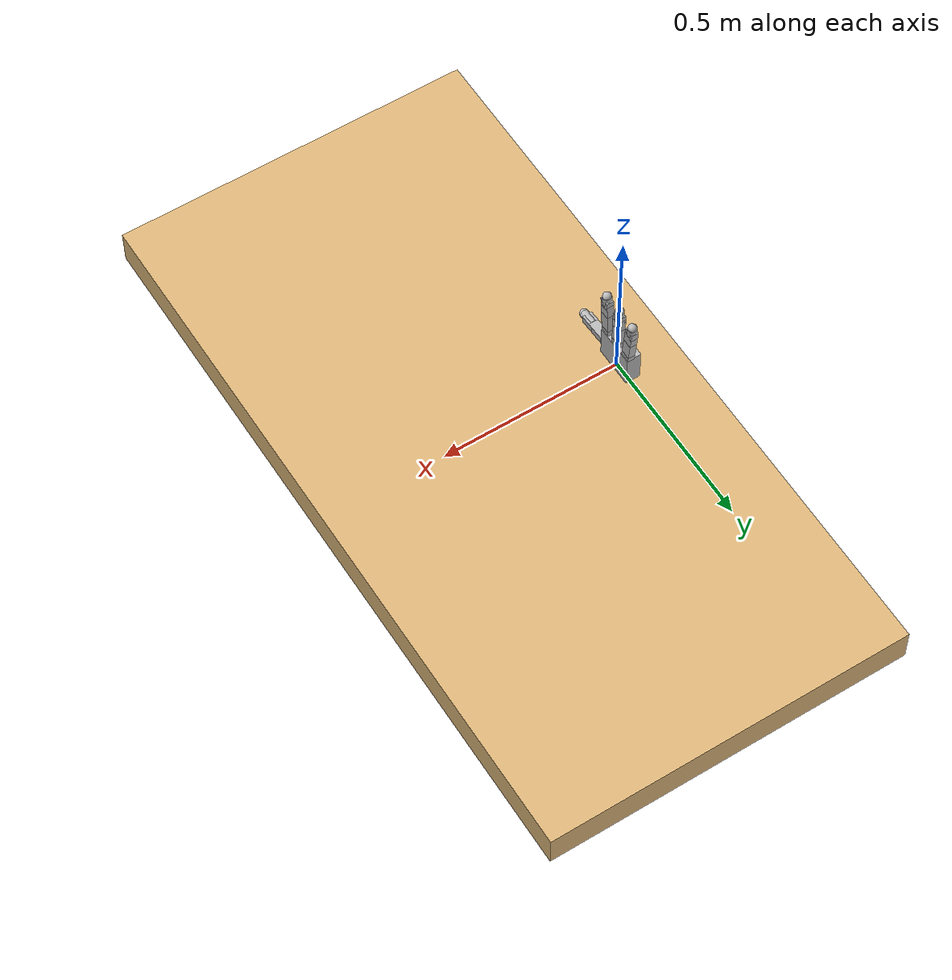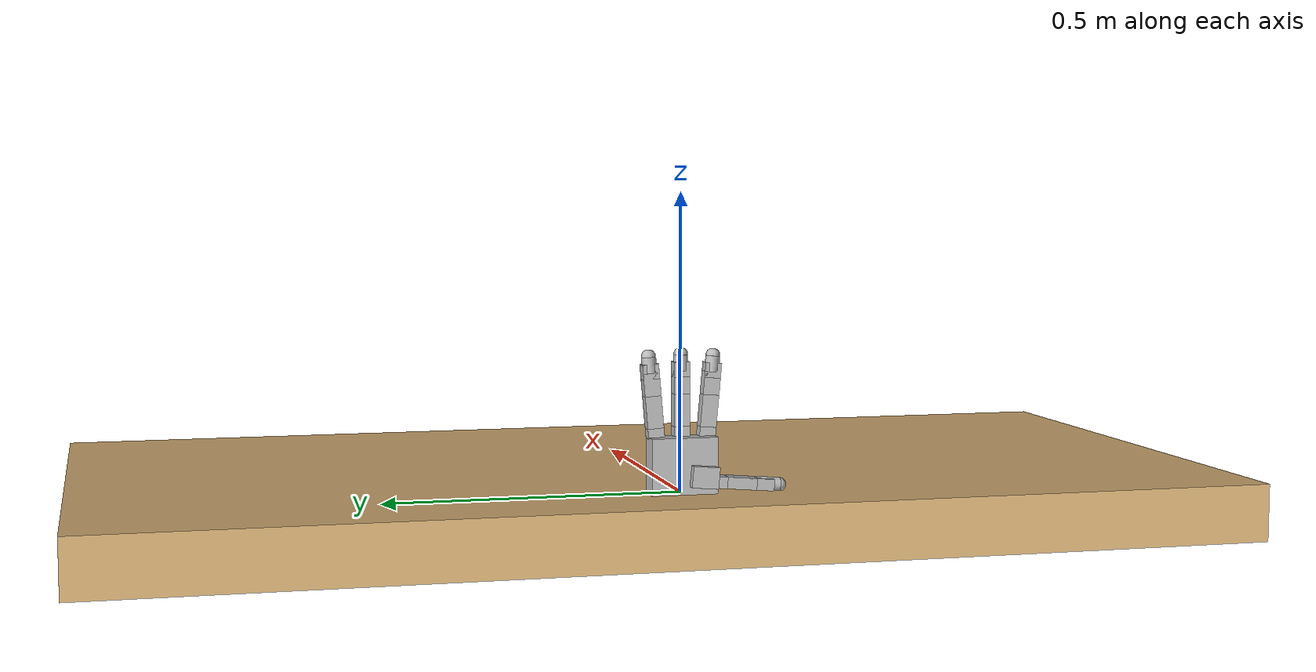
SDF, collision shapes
<?xml version="1.0"?>
<sdf version="1.7">
  <model name="algr_lh_simplified">

    <!-- TABLETOP -->

    <link name="tabletop_base">
      <pose>0.34 0.0 -0.05 0.0 0.0 0.0</pose>
      <inertial>
        <pose>0 0 0 0 0 0</pose>
        <mass>10</mass>
        <inertia>
          <ixx>3.3417</ixx>
          <ixy>0</ixy>
          <ixz>0</ixz>
          <iyy>0.84167</iyy>
          <iyz>0</iyz>
          <izz>4.1667</izz>
        </inertia>
      </inertial>
      <visual name="tabletop_visual">
        <geometry>
          <box>
            <size>1 2 0.1</size>
          </box>
        </geometry>
        <material>
          <diffuse>0.859375 0.70703125 0.47265625 1.</diffuse>
        </material>
      </visual>
      <collision name="tabletop_collision">
        <geometry>
          <box>
            <size>1 2 0.1</size>
          </box>
        </geometry>
      </collision>
    </link>
    <joint name="table_weld" type="fixed">
      <child>tabletop_base</child>
      <parent>world</parent>
    </joint>

    <!-- ALLEGRO HAND -->

    <link name="algr_lh_palm">
      <inertial>
        <pose>-0.0093 0 0.0475 0 0 0</pose>
        <mass>0.4154</mass>
        <inertia>
          <ixx>0.00075444</ixx>
          <ixy>0</ixy>
          <ixz>0</ixz>
          <iyy>0.00037004</iyy>
          <iyz>0</iyz>
          <izz>0.00049964</izz>
        </inertia>
      </inertial>
      <collision name="algr_lh_palm_collision">
        <pose>-0.0093 0 0.0475 0 0 0</pose>
        <geometry>
          <box>
            <size>0.0408 0.113 0.095</size>
          </box>
        </geometry>
      </collision>
      <visual name="algr_lh_palm_visual">
        <pose>0 0 0.095 -1.5708 0 0</pose>
        <geometry>
          <mesh>
            <scale>1 1 1</scale>
            <uri>meshes/base_link_left.obj</uri>
          </mesh>
        </geometry>
      </visual>
    </link>
    <link name="algr_lh_if_bs">
      <pose>0 -0.0435 0.093458 0.087267 0 0</pose>
      <inertial>
        <pose>0 0 0.0082 0 0 0</pose>
        <mass>0.0119</mass>
        <inertia>
          <ixx>1.0167e-06</ixx>
          <ixy>0</ixy>
          <ixz>0</ixz>
          <iyy>6.4768e-07</iyy>
          <iyz>0</iyz>
          <izz>1.1309e-06</izz>
        </inertia>
      </inertial>
      <collision name="algr_lh_if_bs_collision">
        <pose>0 0 0.0082 0 0 0</pose>
        <geometry>
          <box>
            <size>0.0196 0.0275 0.0164</size>
          </box>
        </geometry>
      </collision>
      <visual name="algr_lh_if_bs_visual">
        <geometry>
          <mesh>
            <scale>1 1 1</scale>
            <uri>meshes/link_0.0.obj</uri>
          </mesh>
        </geometry>
      </visual>
    </link>
    <joint name="algr_lh_if_axl" type="revolute">
      <child>algr_lh_if_bs</child>
      <parent>algr_lh_palm</parent>
      <axis>
        <xyz expressed_in="__model__">0 -0.087156 0.996195</xyz>
        <limit>
          <lower>-0.47</lower>
          <upper>0.47</upper>
          <effort>0.7</effort>
        </limit>
        <dynamics>
          <damping>1.5e-2</damping>
        </dynamics>
      </axis>
    </joint>
    <link name="algr_lh_if_px">
      <pose>0 -0.044929 0.109796 0.087267 0 0</pose>
      <inertial>
        <pose>0 6.9389e-18 0.027 0 0 0</pose>
        <mass>0.065</mass>
        <inertia>
          <ixx>1.9891e-05</ixx>
          <ixy>0</ixy>
          <ixz>0</ixz>
          <iyy>1.7876e-05</iyy>
          <iyz>0</iyz>
          <izz>6.1772e-06</izz>
        </inertia>
      </inertial>
      <collision name="algr_lh_if_px_collision">
        <pose>0 0 0.027 0 0 0</pose>
        <geometry>
          <box>
            <size>0.0196 0.0275 0.054</size>
          </box>
        </geometry>
      </collision>
      <visual name="algr_lh_if_px_visual">
        <geometry>
          <mesh>
            <scale>1 1 1</scale>
            <uri>meshes/link_1.0.obj</uri>
          </mesh>
        </geometry>
      </visual>
    </link>
    <joint name="algr_lh_if_mcp" type="revolute">
      <child>algr_lh_if_px</child>
      <parent>algr_lh_if_bs</parent>
      <axis>
        <xyz expressed_in="__model__">0 0.996195 0.087156</xyz>
        <limit>
          <lower>-0.196</lower>
          <upper>1.61</upper>
          <effort>0.7</effort>
        </limit>
        <dynamics>
          <damping>1.5e-2</damping>
        </dynamics>
      </axis>
    </joint>
    <link name="algr_lh_if_md">
      <pose>0 -0.049636 0.16359 0.087267 0 0</pose>
      <inertial>
        <pose>0 -6.9389e-18 0.0192 0 0 0</pose>
        <mass>0.0355</mass>
        <inertia>
          <ixx>6.5995e-06</ixx>
          <ixy>0</ixy>
          <ixz>0</ixz>
          <iyy>5.4987e-06</iyy>
          <iyz>0</iyz>
          <izz>3.3737e-06</izz>
        </inertia>
      </inertial>
      <collision name="algr_lh_if_md_collision">
        <pose>0 0 0.0192 0 0 0</pose>
        <geometry>
          <box>
            <size>0.0196 0.0275 0.0384</size>
          </box>
        </geometry>
      </collision>
      <visual name="algr_lh_if_md_visual">
        <geometry>
          <mesh>
            <scale>1 1 1</scale>
            <uri>meshes/link_2.0.obj</uri>
          </mesh>
        </geometry>
      </visual>
    </link>
    <joint name="algr_lh_if_pip" type="revolute">
      <child>algr_lh_if_md</child>
      <parent>algr_lh_if_px</parent>
      <axis>
        <xyz expressed_in="__model__">0 0.996195 0.087156</xyz>
        <limit>
          <lower>-0.174</lower>
          <upper>1.709</upper>
          <effort>0.7</effort>
        </limit>
        <dynamics>
          <damping>1.5e-2</damping>
        </dynamics>
      </axis>
    </joint>
    <link name="algr_lh_if_ds">
      <pose>0 -0.052983 0.201844 0.087267 0 0</pose>
      <inertial>
        <pose>0 -1.3878e-17 0.011823 0 0 0</pose>
        <mass>0.0264</mass>
        <inertia>
          <ixx>4.7816e-06</ixx>
          <ixy>0</ixy>
          <ixz>0</ixz>
          <iyy>4.4476e-06</iyy>
          <iyz>0</iyz>
          <izz>2.0646e-06</izz>
        </inertia>
      </inertial>
      <collision name="algr_lh_if_ds_collision_1">
        <pose>0 0 0.00235 0 0 0</pose>
        <geometry>
          <box>
            <size>0.0196 0.0275 0.0247</size>
          </box>
        </geometry>
      </collision>
      <collision name="algr_lh_if_ds_tip_collision_1_FROGGERCOL">
        <pose>0 0 0.0267 0 0 0</pose>
        <geometry>
          <sphere>
            <radius>0.012</radius>
          </sphere>
        </geometry>
        <drake:proximity_properties>
          <drake:rigid_hydroelastic/>
          <drake:mesh_resolution_hint>0.1</drake:mesh_resolution_hint>
          <drake:hunt_crossley_dissipation>1.0</drake:hunt_crossley_dissipation>
        </drake:proximity_properties>
      </collision>
      <collision name="algr_lh_if_ds_tip_collision_2_FROGGERCOL">
        <pose>0 0 0.01335 0 0 0</pose>
        <geometry>
          <cylinder>
            <length>0.0267</length>
            <radius>0.012</radius>
          </cylinder>
        </geometry>
      </collision>
      <visual name="algr_lh_if_ds_visual">
        <geometry>
          <mesh>
            <scale>1 1 1</scale>
            <uri>meshes/link_3.0.obj</uri>
          </mesh>
        </geometry>
      </visual>
      <visual name="algr_lh_if_ds_tip_visual_1">
        <pose>0 0 0.0267 0 0 0</pose>
        <geometry>
          <mesh>
            <scale>1 1 1</scale>
            <uri>meshes/link_3.0_tip.obj</uri>
          </mesh>
        </geometry>
      </visual>
    </link>
    <joint name="algr_lh_if_dip" type="revolute">
      <child>algr_lh_if_ds</child>
      <parent>algr_lh_if_md</parent>
      <axis>
        <xyz expressed_in="__model__">0 0.996195 0.087156</xyz>
        <limit>
          <lower>-0.227</lower>
          <upper>1.618</upper>
          <effort>0.7</effort>
        </limit>
        <dynamics>
          <damping>1.5e-2</damping>
        </dynamics>
      </axis>
    </joint>
    <link name="algr_lh_mf_bs">
      <pose>0 0 0.0957 0 0 0</pose>
      <inertial>
        <pose>0 0 0.0082 0 0 0</pose>
        <mass>0.0119</mass>
        <inertia>
          <ixx>1.0167e-06</ixx>
          <ixy>0</ixy>
          <ixz>0</ixz>
          <iyy>6.4768e-07</iyy>
          <iyz>0</iyz>
          <izz>1.1309e-06</izz>
        </inertia>
      </inertial>
      <collision name="algr_lh_mf_bs_collision">
        <pose>0 0 0.0082 0 0 0</pose>
        <geometry>
          <box>
            <size>0.0196 0.0275 0.0164</size>
          </box>
        </geometry>
      </collision>
      <visual name="algr_lh_mf_bs_visual">
        <geometry>
          <mesh>
            <scale>1 1 1</scale>
            <uri>meshes/link_0.0.obj</uri>
          </mesh>
        </geometry>
      </visual>
    </link>
    <joint name="algr_lh_mf_axl" type="revolute">
      <child>algr_lh_mf_bs</child>
      <parent>algr_lh_palm</parent>
      <axis>
        <xyz expressed_in="__model__">0 0 1</xyz>
        <limit>
          <lower>-0.47</lower>
          <upper>0.47</upper>
          <effort>0.7</effort>
        </limit>
        <dynamics>
          <damping>1.5e-2</damping>
        </dynamics>
      </axis>
    </joint>
    <link name="algr_lh_mf_px">
      <pose>0 0 0.1121 0 0 0</pose>
      <inertial>
        <pose>0 0 0.027 0 0 0</pose>
        <mass>0.065</mass>
        <inertia>
          <ixx>1.9891e-05</ixx>
          <ixy>0</ixy>
          <ixz>0</ixz>
          <iyy>1.7876e-05</iyy>
          <iyz>0</iyz>
          <izz>6.1772e-06</izz>
        </inertia>
      </inertial>
      <collision name="algr_lh_mf_px_collision">
        <pose>0 0 0.027 0 0 0</pose>
        <geometry>
          <box>
            <size>0.0196 0.0275 0.054</size>
          </box>
        </geometry>
      </collision>
      <visual name="algr_lh_mf_px_visual">
        <geometry>
          <mesh>
            <scale>1 1 1</scale>
            <uri>meshes/link_1.0.obj</uri>
          </mesh>
        </geometry>
      </visual>
    </link>
    <joint name="algr_lh_mf_mcp" type="revolute">
      <child>algr_lh_mf_px</child>
      <parent>algr_lh_mf_bs</parent>
      <axis>
        <xyz expressed_in="__model__">0 1 0</xyz>
        <limit>
          <lower>-0.196</lower>
          <upper>1.61</upper>
          <effort>0.7</effort>
        </limit>
        <dynamics>
          <damping>1.5e-2</damping>
        </dynamics>
      </axis>
    </joint>
    <link name="algr_lh_mf_md">
      <pose>0 0 0.1661 0 0 0</pose>
      <inertial>
        <pose>0 0 0.0192 0 0 0</pose>
        <mass>0.0355</mass>
        <inertia>
          <ixx>6.5995e-06</ixx>
          <ixy>0</ixy>
          <ixz>0</ixz>
          <iyy>5.4987e-06</iyy>
          <iyz>0</iyz>
          <izz>3.3737e-06</izz>
        </inertia>
      </inertial>
      <collision name="algr_lh_mf_md_collision">
        <pose>0 0 0.0192 0 0 0</pose>
        <geometry>
          <box>
            <size>0.0196 0.0275 0.0384</size>
          </box>
        </geometry>
      </collision>
      <visual name="algr_lh_mf_md_visual">
        <geometry>
          <mesh>
            <scale>1 1 1</scale>
            <uri>meshes/link_2.0.obj</uri>
          </mesh>
        </geometry>
      </visual>
    </link>
    <joint name="algr_lh_mf_pip" type="revolute">
      <child>algr_lh_mf_md</child>
      <parent>algr_lh_mf_px</parent>
      <axis>
        <xyz expressed_in="__model__">0 1 0</xyz>
        <limit>
          <lower>-0.174</lower>
          <upper>1.709</upper>
          <effort>0.7</effort>
        </limit>
        <dynamics>
          <damping>1.5e-2</damping>
        </dynamics>
      </axis>
    </joint>
    <link name="algr_lh_mf_ds">
      <pose>0 0 0.2045 0 0 0</pose>
      <inertial>
        <pose>0 0 0.011823 0 0 0</pose>
        <mass>0.0264</mass>
        <inertia>
          <ixx>4.7816e-06</ixx>
          <ixy>0</ixy>
          <ixz>0</ixz>
          <iyy>4.4476e-06</iyy>
          <iyz>0</iyz>
          <izz>2.0646e-06</izz>
        </inertia>
      </inertial>
      <collision name="algr_lh_mf_ds_collision_1">
        <pose>0 0 0.00235 0 0 0</pose>
        <geometry>
          <box>
            <size>0.0196 0.0275 0.0247</size>
          </box>
        </geometry>
      </collision>
      <collision name="algr_lh_mf_ds_tip_collision_1_FROGGERCOL">
        <pose>0 0 0.0267 0 0 0</pose>
        <geometry>
          <sphere>
            <radius>0.012</radius>
          </sphere>
        </geometry>
        <drake:proximity_properties>
          <drake:rigid_hydroelastic/>
          <drake:mesh_resolution_hint>0.1</drake:mesh_resolution_hint>
          <drake:hunt_crossley_dissipation>1.0</drake:hunt_crossley_dissipation>
        </drake:proximity_properties>
      </collision>
      <collision name="algr_lh_mf_ds_tip_collision_2_FROGGERCOL">
        <pose>0 0 0.01335 0 0 0</pose>
        <geometry>
          <cylinder>
            <length>0.0267</length>
            <radius>0.012</radius>
          </cylinder>
        </geometry>
      </collision>
      <visual name="algr_lh_mf_ds_visual">
        <geometry>
          <mesh>
            <scale>1 1 1</scale>
            <uri>meshes/link_3.0.obj</uri>
          </mesh>
        </geometry>
      </visual>
      <visual name="algr_lh_mf_ds_tip_visual_1">
        <pose>0 0 0.0267 0 0 0</pose>
        <geometry>
          <mesh>
            <scale>1 1 1</scale>
            <uri>meshes/link_3.0_tip.obj</uri>
          </mesh>
        </geometry>
      </visual>
    </link>
    <joint name="algr_lh_mf_dip" type="revolute">
      <child>algr_lh_mf_ds</child>
      <parent>algr_lh_mf_md</parent>
      <axis>
        <xyz expressed_in="__model__">0 1 0</xyz>
        <limit>
          <lower>-0.227</lower>
          <upper>1.618</upper>
          <effort>0.7</effort>
        </limit>
        <dynamics>
          <damping>1.5e-2</damping>
        </dynamics>
      </axis>
    </joint>
    <link name="algr_lh_rf_bs">
      <pose>0 0.0435 0.093458 -0.087267 0 0</pose>
      <inertial>
        <pose>0 0 0.0082 0 0 0</pose>
        <mass>0.0119</mass>
        <inertia>
          <ixx>1.0167e-06</ixx>
          <ixy>0</ixy>
          <ixz>0</ixz>
          <iyy>6.4768e-07</iyy>
          <iyz>0</iyz>
          <izz>1.1309e-06</izz>
        </inertia>
      </inertial>
      <collision name="algr_lh_rf_bs_collision">
        <pose>0 0 0.0082 0 0 0</pose>
        <geometry>
          <box>
            <size>0.0196 0.0275 0.0164</size>
          </box>
        </geometry>
      </collision>
      <visual name="algr_lh_rf_bs_visual">
        <geometry>
          <mesh>
            <scale>1 1 1</scale>
            <uri>meshes/link_0.0.obj</uri>
          </mesh>
        </geometry>
      </visual>
    </link>
    <joint name="algr_lh_rf_axl" type="revolute">
      <child>algr_lh_rf_bs</child>
      <parent>algr_lh_palm</parent>
      <axis>
        <xyz expressed_in="__model__">0 0.087156 0.996195</xyz>
        <limit>
          <lower>-0.47</lower>
          <upper>0.47</upper>
          <effort>0.7</effort>
        </limit>
        <dynamics>
          <damping>1.5e-2</damping>
        </dynamics>
      </axis>
    </joint>
    <link name="algr_lh_rf_px">
      <pose>0 0.044929 0.109796 -0.087267 0 0</pose>
      <inertial>
        <pose>0 -6.9389e-18 0.027 0 0 0</pose>
        <mass>0.065</mass>
        <inertia>
          <ixx>1.9891e-05</ixx>
          <ixy>0</ixy>
          <ixz>0</ixz>
          <iyy>1.7876e-05</iyy>
          <iyz>0</iyz>
          <izz>6.1772e-06</izz>
        </inertia>
      </inertial>
      <collision name="algr_lh_rf_px_collision">
        <pose>0 0 0.027 0 0 0</pose>
        <geometry>
          <box>
            <size>0.0196 0.0275 0.054</size>
          </box>
        </geometry>
      </collision>
      <visual name="algr_lh_rf_px_visual">
        <geometry>
          <mesh>
            <scale>1 1 1</scale>
            <uri>meshes/link_1.0.obj</uri>
          </mesh>
        </geometry>
      </visual>
    </link>
    <joint name="algr_lh_rf_mcp" type="revolute">
      <child>algr_lh_rf_px</child>
      <parent>algr_lh_rf_bs</parent>
      <axis>
        <xyz expressed_in="__model__">0 0.996195 -0.087156</xyz>
        <limit>
          <lower>-0.196</lower>
          <upper>1.61</upper>
          <effort>0.7</effort>
        </limit>
        <dynamics>
          <damping>1.5e-2</damping>
        </dynamics>
      </axis>
    </joint>
    <link name="algr_lh_rf_md">
      <pose>0 0.049636 0.16359 -0.087267 0 0</pose>
      <inertial>
        <pose>0 6.9389e-18 0.0192 0 0 0</pose>
        <mass>0.0355</mass>
        <inertia>
          <ixx>6.5995e-06</ixx>
          <ixy>0</ixy>
          <ixz>0</ixz>
          <iyy>5.4987e-06</iyy>
          <iyz>0</iyz>
          <izz>3.3737e-06</izz>
        </inertia>
      </inertial>
      <collision name="algr_lh_rf_md_collision">
        <pose>0 0 0.0192 0 0 0</pose>
        <geometry>
          <box>
            <size>0.0196 0.0275 0.0384</size>
          </box>
        </geometry>
      </collision>
      <visual name="algr_lh_rf_md_visual">
        <geometry>
          <mesh>
            <scale>1 1 1</scale>
            <uri>meshes/link_2.0.obj</uri>
          </mesh>
        </geometry>
      </visual>
    </link>
    <joint name="algr_lh_rf_pip" type="revolute">
      <child>algr_lh_rf_md</child>
      <parent>algr_lh_rf_px</parent>
      <axis>
        <xyz expressed_in="__model__">0 0.996195 -0.087156</xyz>
        <limit>
          <lower>-0.174</lower>
          <upper>1.709</upper>
          <effort>0.7</effort>
        </limit>
        <dynamics>
          <damping>1.5e-2</damping>
        </dynamics>
      </axis>
    </joint>
    <link name="algr_lh_rf_ds">
      <pose>0 0.052983 0.201844 -0.087267 0 0</pose>
      <inertial>
        <pose>0 1.3878e-17 0.011823 0 0 0</pose>
        <mass>0.0264</mass>
        <inertia>
          <ixx>4.7816e-06</ixx>
          <ixy>0</ixy>
          <ixz>0</ixz>
          <iyy>4.4476e-06</iyy>
          <iyz>0</iyz>
          <izz>2.0646e-06</izz>
        </inertia>
      </inertial>
      <collision name="algr_lh_rf_ds_collision_1">
        <pose>0 0 0.00235 0 0 0</pose>
        <geometry>
          <box>
            <size>0.0196 0.0275 0.0247</size>
          </box>
        </geometry>
      </collision>
      <collision name="algr_lh_rf_ds_tip_collision_1_FROGGERCOL">
        <pose>0 0 0.0267 0 0 0</pose>
        <geometry>
          <sphere>
            <radius>0.012</radius>
          </sphere>
        </geometry>
        <drake:proximity_properties>
          <drake:rigid_hydroelastic/>
          <drake:mesh_resolution_hint>0.1</drake:mesh_resolution_hint>
          <drake:hunt_crossley_dissipation>1.0</drake:hunt_crossley_dissipation>
        </drake:proximity_properties>
      </collision>
      <collision name="algr_lh_rf_ds_tip_collision_2_FROGGERCOL">
        <pose>0 0 0.01335 0 0 0</pose>
        <geometry>
          <cylinder>
            <length>0.0267</length>
            <radius>0.012</radius>
          </cylinder>
        </geometry>
      </collision>
      <visual name="algr_lh_rf_ds_visual">
        <geometry>
          <mesh>
            <scale>1 1 1</scale>
            <uri>meshes/link_3.0.obj</uri>
          </mesh>
        </geometry>
      </visual>
      <visual name="algr_lh_rf_ds_tip_visual_1">
        <pose>0 0 0.0267 0 0 0</pose>
        <geometry>
          <mesh>
            <scale>1 1 1</scale>
            <uri>meshes/link_3.0_tip.obj</uri>
          </mesh>
        </geometry>
      </visual>
    </link>
    <joint name="algr_lh_rf_dip" type="revolute">
      <child>algr_lh_rf_ds</child>
      <parent>algr_lh_rf_md</parent>
      <axis>
        <xyz expressed_in="__model__">0 0.996195 -0.087156</xyz>
        <limit>
          <lower>-0.227</lower>
          <upper>1.618</upper>
          <effort>0.7</effort>
        </limit>
        <dynamics>
          <damping>1.5e-2</damping>
        </dynamics>
      </axis>
    </joint>
    <link name="algr_lh_th_mp">
      <pose>-0.0182 -0.019333 0.049013 -3.14159 -1.48353 -1.5708</pose>
      <inertial>
        <pose>-0.0179 0.009 0.0145 0 0 0</pose>
        <mass>0.0176</mass>
        <inertia>
          <ixx>4.7318e-06</ixx>
          <ixy>0</ixy>
          <ixz>0</ixz>
          <iyy>4.9161e-06</iyy>
          <iyz>0</iyz>
          <izz>3.5752e-06</izz>
        </inertia>
      </inertial>
      <collision name="algr_lh_th_mp_collision">
        <pose>-0.0179 0.009 0.0145 0 0 0</pose>
        <geometry>
          <box>
            <size>0.0358 0.034 0.0455</size>
          </box>
        </geometry>
      </collision>
      <visual name="algr_lh_th_mp_visual">
        <pose>0 0 0 3.14159 0 0</pose>
        <geometry>
          <mesh>
            <scale>1 1 1</scale>
            <uri>meshes/link_12.0_left.obj</uri>
          </mesh>
        </geometry>
      </visual>
    </link>
    <joint name="algr_lh_th_cmc" type="revolute">
      <child>algr_lh_th_mp</child>
      <parent>algr_lh_palm</parent>
      <axis>
        <xyz expressed_in="__model__">-0 -0.087156 0.996195</xyz>
        <limit>
          <lower>0.263</lower>
          <upper>1.396</upper>
          <effort>0.7</effort>
        </limit>
        <dynamics>
          <damping>1.5e-2</damping>
        </dynamics>
      </axis>
    </joint>
    <link name="algr_lh_th_bs">
      <pose>-0.0132 -0.056728 0.018638 -3.14159 -1.48353 -1.5708</pose>
      <inertial>
        <pose>-6.9389e-18 5.2042e-18 0.00885 0 0 0</pose>
        <mass>0.0119</mass>
        <inertia>
          <ixx>1.0606e-06</ixx>
          <ixy>0</ixy>
          <ixz>0</ixz>
          <iyy>6.9164e-07</iyy>
          <iyz>7.1621e-38</iyz>
          <izz>1.1309e-06</izz>
        </inertia>
      </inertial>
      <!-- [NOTE] this collision geometry caused problems for the Drake team -->
      <collision name='algr_lh_th_bs_collision'>
        <pose>0 0 0.00885 0 0 0</pose>
        <geometry>
          <box>
            <size>0.0196 0.0275 0.0177</size>
          </box>
        </geometry>
      </collision>
      <visual name="algr_lh_th_bs_visual">
        <geometry>
          <mesh>
            <scale>1 1 1</scale>
            <uri>meshes/link_13.0.obj</uri>
          </mesh>
        </geometry>
      </visual>
    </link>
    <joint name="algr_lh_th_axl" type="revolute">
      <child>algr_lh_th_bs</child>
      <parent>algr_lh_th_mp</parent>
      <axis>
        <xyz expressed_in="__model__">0 0.996195 0.087156</xyz>
        <limit>
          <lower>-0.105</lower>
          <upper>1.163</upper>
          <effort>0.7</effort>
        </limit>
        <dynamics>
          <damping>1.5e-2</damping>
        </dynamics>
      </axis>
    </joint>
    <link name="algr_lh_th_px">
      <pose>-0.0132 -0.074361 0.017096 -3.14159 -1.48353 -1.5708</pose>
      <inertial>
        <pose>-6.9389e-18 -3.4694e-18 0.0257 0 0 0</pose>
        <mass>0.038</mass>
        <inertia>
          <ixx>1.0761e-05</ixx>
          <ixy>0</ixy>
          <ixz>0</ixz>
          <iyy>9.5827e-06</iyy>
          <iyz>0</iyz>
          <izz>3.6113e-06</izz>
        </inertia>
      </inertial>
      <collision name="algr_lh_th_px_collision">
        <pose>0 0 0.0257 0 0 0</pose>
        <geometry>
          <box>
            <size>0.0196 0.0275 0.0514</size>
          </box>
        </geometry>
      </collision>
      <visual name="algr_lh_th_px_visual">
        <geometry>
          <mesh>
            <scale>1 1 1</scale>
            <uri>meshes/link_14.0.obj</uri>
          </mesh>
        </geometry>
      </visual>
    </link>
    <joint name="algr_lh_th_mcp" type="revolute">
      <child>algr_lh_th_px</child>
      <parent>algr_lh_th_bs</parent>
      <axis>
        <xyz expressed_in="__model__">-1 0 0</xyz>
        <limit>
          <lower>-0.189</lower>
          <upper>1.644</upper>
          <effort>0.7</effort>
        </limit>
        <dynamics>
          <damping>1.5e-2</damping>
        </dynamics>
      </axis>
    </joint>
    <link name="algr_lh_th_ds">
      <pose>-0.0132 -0.125565 0.012616 -3.14159 -1.48353 -1.5708</pose>
      <inertial>
        <pose>-6.9389e-18 1.7347e-17 0.019365 0 0 0</pose>
        <mass>0.0556</mass>
        <inertia>
          <ixx>1.6162e-05</ixx>
          <ixy>0</ixy>
          <ixz>0</ixz>
          <iyy>1.5383e-05</iyy>
          <iyz>0</iyz>
          <izz>4.4611e-06</izz>
        </inertia>
      </inertial>
      <collision name="algr_lh_th_ds_collision_1">
        <pose>0 0 0.01015 0 0 0</pose>
        <geometry>
          <box>
            <size>0.0196 0.0275 0.0403</size>
          </box>
        </geometry>
      </collision>
      <collision name="algr_lh_th_ds_tip_collision_1_FROGGERCOL">
        <pose>0 0 0.0423 0 0 0</pose>
        <geometry>
          <sphere>
            <radius>0.012</radius>
          </sphere>
        </geometry>
        <drake:proximity_properties>
          <drake:rigid_hydroelastic/>
          <drake:mesh_resolution_hint>0.1</drake:mesh_resolution_hint>
          <drake:hunt_crossley_dissipation>1.0</drake:hunt_crossley_dissipation>
        </drake:proximity_properties>
      </collision>
      <collision name="algr_lh_th_ds_tip_collision_2_FROGGERCOL">
        <pose>0 0 0.02115 0 0 0</pose>
        <geometry>
          <cylinder>
            <length>0.0423</length>
            <radius>0.012</radius>
          </cylinder>
        </geometry>
      </collision>
      <visual name="algr_lh_th_ds_visual">
        <geometry>
          <mesh>
            <scale>1 1 1</scale>
            <uri>meshes/link_15.0.obj</uri>
          </mesh>
        </geometry>
      </visual>
      <visual name="algr_lh_th_ds_tip_visual_1">
        <pose>0 0 0.0423 0 0 0</pose>
        <geometry>
          <mesh>
            <scale>1 1 1</scale>
            <uri>meshes/link_15.0_tip.obj</uri>
          </mesh>
        </geometry>
      </visual>
    </link>
    <joint name="algr_lh_th_ipl" type="revolute">
      <child>algr_lh_th_ds</child>
      <parent>algr_lh_th_px</parent>
      <axis>
        <xyz expressed_in="__model__">-1 0 0</xyz>
        <limit>
          <lower>-0.162</lower>
          <upper>1.719</upper>
          <effort>0.7</effort>
        </limit>
        <dynamics>
          <damping>1.5e-2</damping>
        </dynamics>
      </axis>
    </joint>
    <drake:collision_filter_group name="thumb_base_cfg">
      <drake:member>algr_lh_th_bs</drake:member>
      <drake:member>algr_lh_palm</drake:member>
      <drake:ignored_collision_filter_group>
        thumb_base_cfg
      </drake:ignored_collision_filter_group>
    </drake:collision_filter_group>

    <!-- adding frame for heuristic IK sampling -->
    <joint name="dummy_sampling_joint" type="fixed">
      <child>algr_lh_palm_FROGGERSAMPLE</child>
      <parent>algr_lh_palm</parent>
      <pose>0.0 0.0 0.0 0.0 0.0 0.0</pose>
    </joint>
    <link name="algr_lh_palm_FROGGERSAMPLE">
      <pose>0.0 0.0 0.095 0.0 0.0 0.0</pose>
    </link>
  </model>
</sdf>
